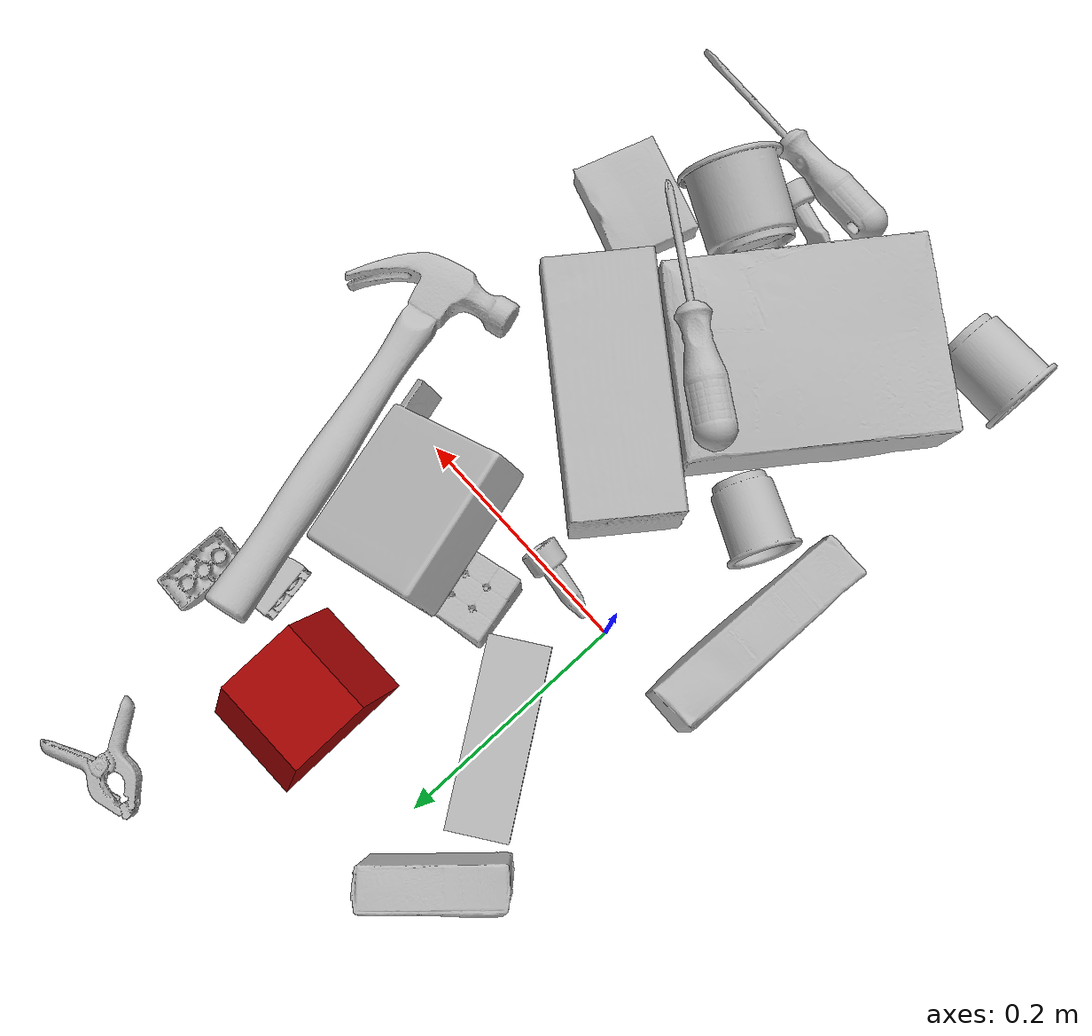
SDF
<sdf version="1.4">
  <world name="default">
    <light name="light1" type="point">
      <pose>0 0 1 0 0 0</pose>
      <diffuse>3 3 3 1</diffuse>
      <specular>3 3 3 1</specular>
    </light>
    <light name="light2" type="point">
      <pose>0 0.5 2 0 0 0</pose>
      <diffuse>1 1 1 1</diffuse>
      <specular>1 1 1 1</specular>
    </light>
    <light name="light3" type="point">
      <pose>0 0.5 2 0 0 0</pose>
      <diffuse>3 3 3 1</diffuse>
      <specular>3 3 3 1</specular>
    </light>
    <scene>
      <ambient>0.7 0.7 0.7</ambient>
    </scene>
    <model name="box21">
      <link name="link_box21">
        <collision name="default">
          <geometry>
            <mesh>
              <uri>model://cracker_box/collision_meshes/collision.obj</uri>
              <scale>1.0 1.0 1.0</scale>
            </mesh>
          </geometry>
          <surface>
            <friction>
              <ode>
                <mu>0.5</mu>
                <mu2>0.5</mu2>
              </ode>
            </friction>
          <contact>
        <ode>
            <max_vel>0</max_vel>
            <min_depth>0.0001</min_depth>
            <kp>1e8</kp>
        </ode>
    </contact></surface>
        </collision>
        <visual name="default">
          <geometry>
            <mesh>
              <uri>model://cracker_box/visual_meshes/visual.dae</uri>
              <scale>1.0 1.0 1.0</scale>
            </mesh>
          </geometry>
        </visual>
        <inertial>
          <mass>1.1849639415740967</mass>
          <pose>0.0009464144241064787 0.0002543424488976598 -0.0017029534792527556 -0.0003162077682631379 -0.011106487737543453 0.002546794536785776</pose>
          <inertia>
            <ixx>0.0030140192</ixx>
            <iyy>0.004976738</iyy>
            <izz>0.007102261</izz>
            <ixy>0</ixy>
            <ixz>0</ixz>
            <iyz>0</iyz>
          </inertia>
        </inertial>
      </link>
      <pose>0.05413505434989929 -0.2588397264480591 0.03553137183189392 3.137202310980301 -0.016543531482963187 0.9520214567206534</pose>
    </model>
    <model name="box22">
      <link name="link_box22">
        <collision name="default">
          <geometry>
            <mesh>
              <uri>model://rubiks_cube/collision_meshes/collision.obj</uri>
              <scale>1.0 1.0 1.0</scale>
            </mesh>
          </geometry>
          <surface>
            <friction>
              <ode>
                <mu>0.5</mu>
                <mu2>0.5</mu2>
              </ode>
            </friction>
          <contact>
        <ode>
            <max_vel>0</max_vel>
            <min_depth>0.0001</min_depth>
            <kp>1e8</kp>
        </ode>
    </contact></surface>
        </collision>
        <visual name="default">
          <geometry>
            <mesh>
              <uri>model://rubiks_cube/visual_meshes/visual.dae</uri>
              <scale>1.0 1.0 1.0</scale>
            </mesh>
          </geometry>
        </visual>
        <inertial>
          <mass>0.10796652734279633</mass>
          <pose>2.6721041649580002e-05 5.2569666877388954e-05 -7.264316082000732e-06 -0.054672548620525036 -0.09813983330627576 -0.03445544186372042</pose>
          <inertia>
            <ixx>5.965876e-05</ixx>
            <iyy>5.9380527e-05</iyy>
            <izz>6.0153117e-05</izz>
            <ixy>0</ixy>
            <ixz>0</ixz>
            <iyz>0</iyz>
          </inertia>
        </inertial>
      </link>
      <pose>0.09062208980321884 0.05857159569859505 0.028679531067609787 -3.528416823793102e-05 1.7002511422963346e-05 0.2413048761880702</pose>
    </model>
    <model name="box23">
      <link name="link_box23">
        <collision name="default">
          <geometry>
            <mesh>
              <uri>model://sugar_box/collision_meshes/collision.obj</uri>
              <scale>1.0 1.0 1.0</scale>
            </mesh>
          </geometry>
          <surface>
            <friction>
              <ode>
                <mu>0.5</mu>
                <mu2>0.5</mu2>
              </ode>
            </friction>
          <contact>
        <ode>
            <max_vel>0</max_vel>
            <min_depth>0.0001</min_depth>
            <kp>1e8</kp>
        </ode>
    </contact></surface>
        </collision>
        <visual name="default">
          <geometry>
            <mesh>
              <uri>model://sugar_box/visual_meshes/visual.dae</uri>
              <scale>1.0 1.0 1.0</scale>
            </mesh>
          </geometry>
        </visual>
        <inertial>
          <mass>0.8519012928009033</mass>
          <pose>0.0010343727190047503 3.8491099985549226e-05 -0.0003636480832938105 -0.00040462606756407727 0.0010506635218583888 0.002615378789044619</pose>
          <inertia>
            <ixx>0.00070980185</ixx>
            <iyy>0.0022942254</iyy>
            <izz>0.0027464617</izz>
            <ixy>0</ixy>
            <ixz>0</ixz>
            <iyz>0</iyz>
          </inertia>
        </inertial>
      </link>
      <pose>-0.07665799558162689 -0.07734011113643646 0.046450089663267136 1.5710196679776933 -4.010056999343205e-05 1.5447621862909824</pose>
    </model>
    <model name="cup1">
      <link name="link_cup1">
        <collision name="default">
          <geometry>
            <mesh>
              <uri>model://b_cups/collision_meshes/collision.obj</uri>
              <scale>1.0 1.0 1.0</scale>
            </mesh>
          </geometry>
          <surface>
            <friction>
              <ode>
                <mu>0.5</mu>
                <mu2>0.5</mu2>
              </ode>
            </friction>
          <contact>
        <ode>
            <max_vel>0</max_vel>
            <min_depth>0.0001</min_depth>
            <kp>1e8</kp>
        </ode>
    </contact></surface>
        </collision>
        <visual name="default">
          <geometry>
            <mesh>
              <uri>model://b_cups/visual_meshes/visual.dae</uri>
              <scale>1.0 1.0 1.0</scale>
            </mesh>
          </geometry>
        </visual>
        <inertial>
          <mass>0.025879299268126488</mass>
          <pose>0.0005181999877095222 0.0018058597343042493 -0.0013381816679611802 0.11356295314662153 0.03872538879904025 -0.34569789869984097</pose>
          <inertia>
            <ixx>1.6939814e-05</ixx>
            <iyy>1.6618207e-05</iyy>
            <izz>1.4254532e-05</izz>
            <ixy>0</ixy>
            <ixz>0</ixz>
            <iyz>0</iyz>
          </inertia>
        </inertial>
      </link>
      <pose>-0.011727304197847843 -0.14243410527706146 0.027648288756608963 -1.4301508097281717 0.8653132545125327 1.2453950879753952</pose>
    </model>
    <model name="cup2">
      <link name="link_cup2">
        <collision name="default">
          <geometry>
            <mesh>
              <uri>model://g_cups/collision_meshes/collision.obj</uri>
              <scale>1.0 1.0 1.0</scale>
            </mesh>
          </geometry>
          <surface>
            <friction>
              <ode>
                <mu>0.5</mu>
                <mu2>0.5</mu2>
              </ode>
            </friction>
          <contact>
        <ode>
            <max_vel>0</max_vel>
            <min_depth>0.0001</min_depth>
            <kp>1e8</kp>
        </ode>
    </contact></surface>
        </collision>
        <visual name="default">
          <geometry>
            <mesh>
              <uri>model://g_cups/visual_meshes/visual.dae</uri>
              <scale>1.0 1.0 1.0</scale>
            </mesh>
          </geometry>
        </visual>
        <inertial>
          <mass>0.06683293730020523</mass>
          <pose>-0.0007946278783492744 -4.206685844110325e-05 -0.002132937777787447 -0.21382591566164685 -0.31410327542238353 0.3112138520870617</pose>
          <inertia>
            <ixx>7.8009005e-05</ixx>
            <iyy>7.7743636e-05</iyy>
            <izz>8.080389e-05</izz>
            <ixy>0</ixy>
            <ixz>0</ixz>
            <iyz>0</iyz>
          </inertia>
        </inertial>
      </link>
      <pose>0.17498858273029327 -0.3084224760532379 0.04006246104836464 1.2257260641145922 -1.2794099777336077 1.4479632671961848</pose>
    </model>
    <model name="box11">
      <link name="link_box11">
        <collision name="default">
          <geometry>
            <mesh>
              <uri>model://wood_block/collision_meshes/collision.obj</uri>
              <scale>1.0 1.0 1.0</scale>
            </mesh>
          </geometry>
          <surface>
            <friction>
              <ode>
                <mu>0.5</mu>
                <mu2>0.5</mu2>
              </ode>
            </friction>
          <contact>
        <ode>
            <max_vel>0</max_vel>
            <min_depth>0.0001</min_depth>
            <kp>1e8</kp>
        </ode>
    </contact></surface>
        </collision>
        <visual name="default">
          <geometry>
            <mesh>
              <uri>model://wood_block/visual_meshes/visual.dae</uri>
              <scale>1.0 1.0 1.0</scale>
            </mesh>
          </geometry>
        </visual>
        <inertial>
          <mass>0.9227498173713684</mass>
          <pose>-5.813315056002466e-06 -0.0005708094104193151 0.0002640858292579651 -0.05221074847543751 -0.005192695234575722 -0.00686137748598008</pose>
          <inertia>
            <ixx>0.001234779</ixx>
            <iyy>0.0039006667</iyy>
            <izz>0.0038860766</izz>
            <ixy>0</ixy>
            <ixz>0</ixz>
            <iyz>0</iyz>
          </inertia>
        </inertial>
      </link>
      <pose>0.13042326271533966 -0.12409736216068268 0.04570068046450615 1.5681300274706167 -0.006938843476672392 2.515524816241661</pose>
    </model>
    <model name="box12">
      <link name="link_box12">
        <collision name="default">
          <geometry>
            <mesh>
              <uri>model://pudding_box/collision_meshes/collision.obj</uri>
              <scale>1.0 1.0 1.0</scale>
            </mesh>
          </geometry>
          <surface>
            <friction>
              <ode>
                <mu>0.5</mu>
                <mu2>0.5</mu2>
              </ode>
            </friction>
          <contact>
        <ode>
            <max_vel>0</max_vel>
            <min_depth>0.0001</min_depth>
            <kp>1e8</kp>
        </ode>
    </contact></surface>
        </collision>
        <visual name="default">
          <geometry>
            <mesh>
              <uri>model://pudding_box/visual_meshes/visual.dae</uri>
              <scale>1.0 1.0 1.0</scale>
            </mesh>
          </geometry>
        </visual>
        <inertial>
          <mass>0.23326139152050018</mass>
          <pose>0.0004894821904599667 0.0008067885646596551 -0.0005188827635720372 0.0052131032034861725 -0.006603797335681708 0.02007982515858456</pose>
          <inertia>
            <ixx>0.00026369</ixx>
            <iyy>0.00017741251</iyy>
            <izz>0.00038940719</izz>
            <ixy>0</ixy>
            <ixz>0</ixz>
            <iyz>0</iyz>
          </inertia>
        </inertial>
      </link>
      <pose>-0.05039504915475845 0.21819554269313812 0.04459657520055771 0.006686630247896221 -1.54731227441982 2.3892905861491216</pose>
    </model>
    <model name="box13">
      <link name="link_box13">
        <collision name="default">
          <geometry>
            <mesh>
              <uri>model://gelatin_box/collision_meshes/collision.obj</uri>
              <scale>1.0 1.0 1.0</scale>
            </mesh>
          </geometry>
          <surface>
            <friction>
              <ode>
                <mu>0.5</mu>
                <mu2>0.5</mu2>
              </ode>
            </friction>
          <contact>
        <ode>
            <max_vel>0</max_vel>
            <min_depth>0.0001</min_depth>
            <kp>1e8</kp>
        </ode>
    </contact></surface>
        </collision>
        <visual name="default">
          <geometry>
            <mesh>
              <uri>model://gelatin_box/visual_meshes/visual.dae</uri>
              <scale>1.0 1.0 1.0</scale>
            </mesh>
          </geometry>
        </visual>
        <inertial>
          <mass>0.0997389405965805</mass>
          <pose>0.0004319618456065655 0.00011156871187267825 -0.0003640321083366871 -0.001050372080915675 -0.004755817759010177 0.0164405576084854</pose>
          <inertia>
            <ixx>7.040755e-05</ixx>
            <iyy>5.0291743e-05</iyy>
            <izz>0.000107175976</izz>
            <ixy>0</ixy>
            <ixz>0</ixz>
            <iyz>0</iyz>
          </inertia>
        </inertial>
      </link>
      <pose>0.24032074213027954 -0.25386133790016174 0.015168214216828346 0.005597089640426159 -0.007277807613785473 1.2500108410254445</pose>
    </model>
    <model name="box14">
      <link name="link_box14">
        <collision name="default">
          <geometry>
            <mesh>
              <uri>model://jenga/collision_meshes/collision.obj</uri>
              <scale>1.0 1.0 1.0</scale>
            </mesh>
          </geometry>
          <surface>
            <friction>
              <ode>
                <mu>0.5</mu>
                <mu2>0.5</mu2>
              </ode>
            </friction>
          <contact>
        <ode>
            <max_vel>0</max_vel>
            <min_depth>0.0001</min_depth>
            <kp>1e8</kp>
        </ode>
    </contact></surface>
        </collision>
        <visual name="default">
          <geometry>
            <mesh>
              <uri>model://jenga/visual_meshes/visual.dae</uri>
              <scale>1.0 1.0 1.0</scale>
            </mesh>
          </geometry>
        </visual>
        <inertial>
          <mass>0.23366476595401764</mass>
          <pose>-2.502855807051674e-07 -0.0001025000965455547 -4.092339804628864e-05 0.0 -7.34215461761844e-07 0.0</pose>
          <inertia>
            <ixx>6.466071e-05</ixx>
            <iyy>0.0004381392</iyy>
            <izz>0.00046775083</izz>
            <ixy>0</ixy>
            <ixz>0</ixz>
            <iyz>0</iyz>
          </inertia>
        </inertial>
      </link>
      <pose>-0.0039959438145160675 0.11518802493810654 0.014999988488852978 -1.9909152584354794e-05 2.417812194272422e-06 2.1854927406788405</pose>
    </model>
    <model name="cup15">
      <link name="link_cup15">
        <collision name="default">
          <geometry>
            <mesh>
              <uri>model://d_cups/collision_meshes/collision.obj</uri>
              <scale>1.0 1.0 1.0</scale>
            </mesh>
          </geometry>
          <surface>
            <friction>
              <ode>
                <mu>0.5</mu>
                <mu2>0.5</mu2>
              </ode>
            </friction>
          <contact>
        <ode>
            <max_vel>0</max_vel>
            <min_depth>0.0001</min_depth>
            <kp>1e8</kp>
        </ode>
    </contact></surface>
        </collision>
        <visual name="default">
          <geometry>
            <mesh>
              <uri>model://d_cups/visual_meshes/visual.dae</uri>
              <scale>1.0 1.0 1.0</scale>
            </mesh>
          </geometry>
        </visual>
        <inertial>
          <mass>0.05354860797524452</mass>
          <pose>0.000806806143373251 0.001911740517243743 -0.002266649389639497 0.240133395025133 -0.24708811164710584 0.5942101592185234</pose>
          <inertia>
            <ixx>4.4832785e-05</ixx>
            <iyy>4.470303e-05</iyy>
            <izz>4.0581297e-05</izz>
            <ixy>0</ixy>
            <ixz>0</ixz>
            <iyz>0</iyz>
          </inertia>
        </inertial>
      </link>
      <pose>-0.053167227655649185 -0.36439013481140137 0.03266577050089836 -1.4695787871776191 -0.5345104429971678 1.4897012083750347</pose>
    </model>
    <model name="toy1">
      <link name="link_toy1">
        <collision name="default">
          <geometry>
            <mesh>
              <uri>model://d_toy_airplane/collision_meshes/collision.obj</uri>
              <scale>1.0 1.0 1.0</scale>
            </mesh>
          </geometry>
          <surface>
            <friction>
              <ode>
                <mu>0.5</mu>
                <mu2>0.5</mu2>
              </ode>
            </friction>
          <contact>
        <ode>
            <max_vel>0</max_vel>
            <min_depth>0.0001</min_depth>
            <kp>1e8</kp>
        </ode>
    </contact></surface>
        </collision>
        <visual name="default">
          <geometry>
            <mesh>
              <uri>model://d_toy_airplane/visual_meshes/visual.dae</uri>
              <scale>1.0 1.0 1.0</scale>
            </mesh>
          </geometry>
        </visual>
        <inertial>
          <mass>0.01055214088410139</mass>
          <pose>9.410294296685606e-05 -5.809328649775125e-05 -0.011728094890713692 0.00026701540047293157 0.004678982739479609 0.5194739606880012</pose>
          <inertia>
            <ixx>3.1633276e-06</ixx>
            <iyy>3.1657132e-06</iyy>
            <izz>9.55029e-07</izz>
            <ixy>0</ixy>
            <ixz>0</ixz>
            <iyz>0</iyz>
          </inertia>
        </inertial>
      </link>
      <pose>0.05182242393493652 -0.0002525687450543046 0.011406955309212208 1.7959057178071836 0.22941248427358046 -1.6535914109939052</pose>
    </model>
    <model name="toy2">
      <link name="link_toy2">
        <collision name="default">
          <geometry>
            <mesh>
              <uri>model://d_lego_duplo/collision_meshes/collision.obj</uri>
              <scale>1.0 1.0 1.0</scale>
            </mesh>
          </geometry>
          <surface>
            <friction>
              <ode>
                <mu>0.5</mu>
                <mu2>0.5</mu2>
              </ode>
            </friction>
          <contact>
        <ode>
            <max_vel>0</max_vel>
            <min_depth>0.0001</min_depth>
            <kp>1e8</kp>
        </ode>
    </contact></surface>
        </collision>
        <visual name="default">
          <geometry>
            <mesh>
              <uri>model://d_lego_duplo/visual_meshes/visual.dae</uri>
              <scale>1.0 1.0 1.0</scale>
            </mesh>
          </geometry>
        </visual>
        <inertial>
          <mass>0.039816875010728836</mass>
          <pose>0.0028305640444159508 0.00016366131603717804 0.000858980929479003 0.08010950238605453 -0.3835521959243733 0.0010296761363168562</pose>
          <inertia>
            <ixx>7.70796e-06</ixx>
            <iyy>1.0939688e-05</iyy>
            <izz>1.0549791e-05</izz>
            <ixy>0</ixy>
            <ixz>0</ixz>
            <iyz>0</iyz>
          </inertia>
        </inertial>
      </link>
      <pose>0.2083939015865326 0.16643653810024261 0.016795149073004723 1.5993415776402644 -0.04374259065488703 1.7401188211239706</pose>
    </model>
    <model name="toy3">
      <link name="link_toy3">
        <collision name="default">
          <geometry>
            <mesh>
              <uri>model://nine_hole_peg_test/collision_meshes/collision.obj</uri>
              <scale>1.0 1.0 1.0</scale>
            </mesh>
          </geometry>
          <surface>
            <friction>
              <ode>
                <mu>0.5</mu>
                <mu2>0.5</mu2>
              </ode>
            </friction>
          <contact>
        <ode>
            <max_vel>0</max_vel>
            <min_depth>0.0001</min_depth>
            <kp>1e8</kp>
        </ode>
    </contact></surface>
        </collision>
        <visual name="default">
          <geometry>
            <mesh>
              <uri>model://nine_hole_peg_test/visual_meshes/visual.dae</uri>
              <scale>1.0 1.0 1.0</scale>
            </mesh>
          </geometry>
        </visual>
        <inertial>
          <mass>0.7048692107200623</mass>
          <pose>-0.0046173869632184505 -0.009647614322602749 2.6460689696250483e-05 -0.0014666794682547425 0.0007194190753660851 -0.6342416580414534</pose>
          <inertia>
            <ixx>0.0011021789</ixx>
            <iyy>0.0010290928</iyy>
            <izz>0.0019313421</izz>
            <ixy>0</ixy>
            <ixz>0</ixz>
            <iyz>0</iyz>
          </inertia>
        </inertial>
      </link>
      <pose>0.17441004514694214 0.03741566836833954 0.04882662743330002 -3.141583796101306 0.6153815472181167 0.2603234680688271</pose>
    </model>
    <model name="toy4">
      <link name="link_toy4">
        <collision name="default">
          <geometry>
            <mesh>
              <uri>model://a_lego_duplo/collision_meshes/collision.obj</uri>
              <scale>1.0 1.0 1.0</scale>
            </mesh>
          </geometry>
          <surface>
            <friction>
              <ode>
                <mu>0.5</mu>
                <mu2>0.5</mu2>
              </ode>
            </friction>
          <contact>
        <ode>
            <max_vel>0</max_vel>
            <min_depth>0.0001</min_depth>
            <kp>1e8</kp>
        </ode>
    </contact></surface>
        </collision>
        <visual name="default">
          <geometry>
            <mesh>
              <uri>model://a_lego_duplo/visual_meshes/visual.dae</uri>
              <scale>1.0 1.0 1.0</scale>
            </mesh>
          </geometry>
        </visual>
        <inertial>
          <mass>0.021006127819418907</mass>
          <pose>-0.00011337678006384522 0.00018517556600272655 0.0003692602913361043 -0.014116980161978756 -0.00012565077681184441 6.142327078429463e-05</pose>
          <inertia>
            <ixx>2.6931523e-06</ixx>
            <iyy>6.033251e-06</iyy>
            <izz>7.473524e-06</izz>
            <ixy>0</ixy>
            <ixz>0</ixz>
            <iyz>0</iyz>
          </inertia>
        </inertial>
      </link>
      <pose>0.24710971117019653 0.19938133656978607 0.012124799191951752 -3.1412848675876264 -0.015581524302519415 -1.600899144236577</pose>
    </model>
    <model name="toy5">
      <link name="link_toy5">
        <collision name="default">
          <geometry>
            <mesh>
              <uri>model://e_toy_airplane/collision_meshes/collision.obj</uri>
              <scale>1.0 1.0 1.0</scale>
            </mesh>
          </geometry>
          <surface>
            <friction>
              <ode>
                <mu>0.5</mu>
                <mu2>0.5</mu2>
              </ode>
            </friction>
          <contact>
        <ode>
            <max_vel>0</max_vel>
            <min_depth>0.0001</min_depth>
            <kp>1e8</kp>
        </ode>
    </contact></surface>
        </collision>
        <visual name="default">
          <geometry>
            <mesh>
              <uri>model://e_toy_airplane/visual_meshes/visual.dae</uri>
              <scale>1.0 1.0 1.0</scale>
            </mesh>
          </geometry>
        </visual>
        <inertial>
          <mass>0.02451101876795292</mass>
          <pose>0.00011740468471543863 -2.248291639261879e-05 -0.011187203228473663 0.00551850103187323 0.009228285956806933 0.150416364683818</pose>
          <inertia>
            <ixx>7.481042e-06</ixx>
            <iyy>7.4045165e-06</iyy>
            <izz>2.2483475e-06</izz>
            <ixy>0</ixy>
            <ixz>0</ixz>
            <iyz>0</iyz>
          </inertia>
        </inertial>
      </link>
      <pose>0.1334909349679947 -0.34733718633651733 0.015312355943024158 1.588308908896559 0.8225058869045531 -1.7975593810295354</pose>
    </model>
    <model name="toy6">
      <link name="link_toy6">
        <collision name="default">
          <geometry>
            <mesh>
              <uri>model://prism/collision_meshes/collision.obj</uri>
              <scale>1.0 1.0 1.0</scale>
            </mesh>
          </geometry>
          <surface>
            <friction>
              <ode>
                <mu>0.5</mu>
                <mu2>0.5</mu2>
              </ode>
            </friction>
          <contact>
        <ode>
            <max_vel>0</max_vel>
            <min_depth>0.0001</min_depth>
            <kp>1e8</kp>
        </ode>
    </contact></surface>
        </collision>
        <visual name="default">
          <geometry>
            <mesh>
              <uri>model://prism/visual_meshes/visual.dae</uri>
              <scale>1.0 1.0 1.0</scale>
            </mesh>
          </geometry>
        </visual>
        <inertial>
          <mass>0.639074981212616</mass>
          <pose>-9.85359656624496e-05 -4.96157269935793e-07 -0.003386910306289792 0.0 0.006559180766136186 0.0</pose>
          <inertia>
            <ixx>0.0005767573</ixx>
            <iyy>0.0006970186</iyy>
            <izz>0.0008537644</izz>
            <ixy>0</ixy>
            <ixz>0</ixz>
            <iyz>0</iyz>
          </inertia>
        </inertial>
      </link>
      <pose>0.11899997293949127 0.20655091106891632 0.03217000141739845 1.3901836079301645e-08 -2.746114877466105e-08 1.5895490094975708</pose>
    </model>
    <model name="hardware1">
      <link name="link_hardware1">
        <collision name="default">
          <geometry>
            <mesh>
              <uri>model://medium_clamp/collision_meshes/collision.obj</uri>
              <scale>1.0 1.0 1.0</scale>
            </mesh>
          </geometry>
          <surface>
            <friction>
              <ode>
                <mu>0.5</mu>
                <mu2>0.5</mu2>
              </ode>
            </friction>
          <contact>
        <ode>
            <max_vel>0</max_vel>
            <min_depth>0.0001</min_depth>
            <kp>1e8</kp>
        </ode>
    </contact></surface>
        </collision>
        <visual name="default">
          <geometry>
            <mesh>
              <uri>model://medium_clamp/visual_meshes/visual.dae</uri>
              <scale>1.0 1.0 1.0</scale>
            </mesh>
          </geometry>
        </visual>
        <inertial>
          <mass>0.01437164656817913</mass>
          <pose>0.005390993785113096 0.00039532355731353164 -0.0001222158025484532 -0.001226922255807767 0.0025845058861846287 0.038207728721457376</pose>
          <inertia>
            <ixx>3.9153533e-06</ixx>
            <iyy>5.697947e-06</iyy>
            <izz>8.776544e-06</izz>
            <ixy>0</ixy>
            <ixz>0</ixz>
            <iyz>0</iyz>
          </inertia>
        </inertial>
      </link>
      <pose>0.1848151981830597 0.3508734107017517 0.013534089550375938 0.07683107318048794 0.08544444665606281 2.877149634708203</pose>
    </model>
    <model name="hardware2">
      <link name="link_hardware2">
        <collision name="default">
          <geometry>
            <mesh>
              <uri>model://hammer/collision_meshes/collision.obj</uri>
              <scale>1.0 1.0 1.0</scale>
            </mesh>
          </geometry>
          <surface>
            <friction>
              <ode>
                <mu>0.5</mu>
                <mu2>0.5</mu2>
              </ode>
            </friction>
          <contact>
        <ode>
            <max_vel>0</max_vel>
            <min_depth>0.0001</min_depth>
            <kp>1e8</kp>
        </ode>
    </contact></surface>
        </collision>
        <visual name="default">
          <geometry>
            <mesh>
              <uri>model://hammer/visual_meshes/visual.dae</uri>
              <scale>1.0 1.0 1.0</scale>
            </mesh>
          </geometry>
        </visual>
        <inertial>
          <mass>0.29233166575431824</mass>
          <pose>0.009415771812200546 -0.011892357841134071 -0.0001235063245985657 0.02315535385536088 -0.004792164028838156 -0.01276032390705471</pose>
          <inertia>
            <ixx>0.0001252207</ixx>
            <iyy>0.003393116</iyy>
            <izz>0.0034903311</izz>
            <ixy>0</ixy>
            <ixz>0</ixz>
            <iyz>0</iyz>
          </inertia>
        </inertial>
      </link>
      <pose>0.26456037163734436 0.03893965482711792 0.030577341094613075 -0.04190899460391215 0.12100461062333386 -1.2828323196346418</pose>
    </model>
    <model name="hardware3">
      <link name="link_hardware3">
        <collision name="default">
          <geometry>
            <mesh>
              <uri>model://phillips_screwdriver/collision_meshes/collision.obj</uri>
              <scale>1.0 1.0 1.0</scale>
            </mesh>
          </geometry>
          <surface>
            <friction>
              <ode>
                <mu>0.5</mu>
                <mu2>0.5</mu2>
              </ode>
            </friction>
          <contact>
        <ode>
            <max_vel>0</max_vel>
            <min_depth>0.0001</min_depth>
            <kp>1e8</kp>
        </ode>
    </contact></surface>
        </collision>
        <visual name="default">
          <geometry>
            <mesh>
              <uri>model://phillips_screwdriver/visual_meshes/visual.dae</uri>
              <scale>1.0 1.0 1.0</scale>
            </mesh>
          </geometry>
        </visual>
        <inertial>
          <mass>0.11685379594564438</mass>
          <pose>-0.04777182638645172 0.0010362302418798208 -0.0004555549821816385 -0.15721778382646787 0.005850995328295584 -0.002156740385256481</pose>
          <inertia>
            <ixx>1.3729124e-05</ixx>
            <iyy>0.00017213916</iyy>
            <izz>0.00017228544</izz>
            <ixy>0</ixy>
            <ixz>0</ixz>
            <iyz>0</iyz>
          </inertia>
        </inertial>
      </link>
      <pose>0.12850208580493927 -0.2034081518650055 0.08720429986715317 2.9199985297126387 0.031975993309831086 -0.5800170475114402</pose>
    </model>
    <model name="hardware4">
      <link name="link_hardware4">
        <collision name="default">
          <geometry>
            <mesh>
              <uri>model://flat_screwdriver/collision_meshes/collision.obj</uri>
              <scale>1.0 1.0 1.0</scale>
            </mesh>
          </geometry>
          <surface>
            <friction>
              <ode>
                <mu>0.5</mu>
                <mu2>0.5</mu2>
              </ode>
            </friction>
          <contact>
        <ode>
            <max_vel>0</max_vel>
            <min_depth>0.0001</min_depth>
            <kp>1e8</kp>
        </ode>
    </contact></surface>
        </collision>
        <visual name="default">
          <geometry>
            <mesh>
              <uri>model://flat_screwdriver/visual_meshes/visual.dae</uri>
              <scale>1.0 1.0 1.0</scale>
            </mesh>
          </geometry>
        </visual>
        <inertial>
          <mass>0.10915977507829666</mass>
          <pose>-0.0489187091588974 -0.0006576799787580967 -0.000614091579336673 -0.5614402636475724 -0.003233725963840683 0.006982283174401888</pose>
          <inertia>
            <ixx>1.2897148e-05</ixx>
            <iyy>0.0001637322</iyy>
            <izz>0.00016365637</izz>
            <ixy>0</ixy>
            <ixz>0</ixz>
            <iyz>0</iyz>
          </inertia>
        </inertial>
      </link>
      <pose>0.19018390774726868 -0.38573047518730164 0.01517719030380249 1.8334644217958358 0.04231636921891794 -0.03905368651903302</pose>
    </model>
  <physics type="ode">
      <max_contacts>50</max_contacts>
      <ode>
        <solver>
          <type>quick</type>
          <iters>75</iters>
        </solver>
        <constraints>
          <contact_max_correcting_vel>0</contact_max_correcting_vel>
          <contact_surface_layer>0</contact_surface_layer>
        </constraints>
      </ode>
    </physics></world>
</sdf>
